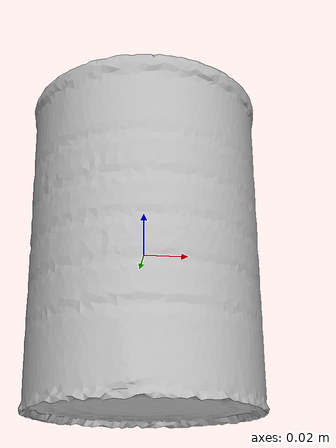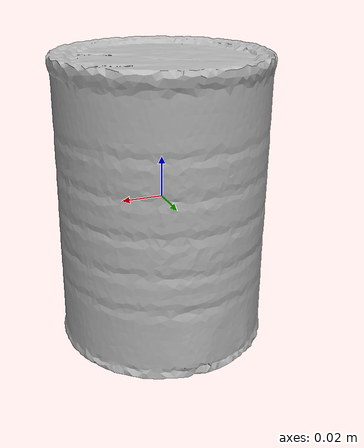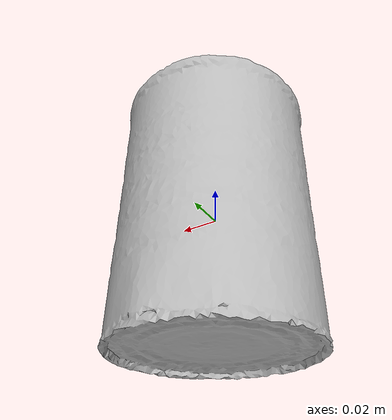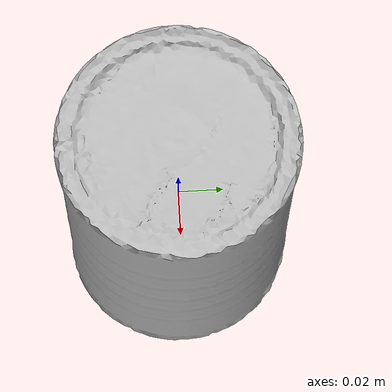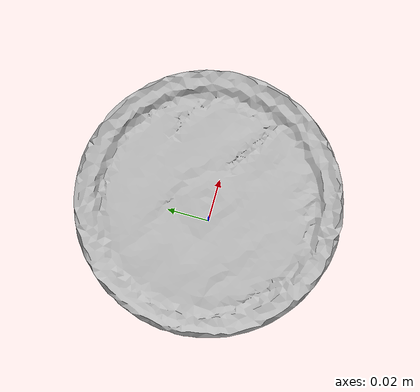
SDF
<?xml version="1.0" ?>
<sdf version="1.7">
<!--
This SDF file was automatically generated using a template modified
and authored by Jinjian Li. The moment of interia is not supposed to be changed.
-->
    <model name="obj_000001">
      <pose>0.0 0.0 0.0 0.0 0.0 0.0</pose>
      <link name="link">
        <inertial>
          <inertia>
           <ixx>0.0033946853952915588</ixx>
           <ixy>1.4614067069964767e-06</ixy>
           <ixz>-2.1442688897517875e-06</ixz>
           <iyy>0.0033877712016054102</iyy>
           <iyz>7.985323142383e-07</iyz>
           <izz>0.0019788587254864413</izz>
          </inertia>
          <mass>1.5809139362916864</mass>
        </inertial>
        <collision name="collision">
          <geometry>
            <mesh>
             <uri>obj_000001.obj</uri>
             <scale>1 1 1</scale>
            </mesh>
          </geometry>
        </collision>

        <visual name="visual">
          <geometry>
            <mesh>
             <uri>obj_000001.obj</uri>
             <scale>1 1 1</scale>
            </mesh>
          </geometry>
        </visual>
      </link>
    </model>
</sdf>
